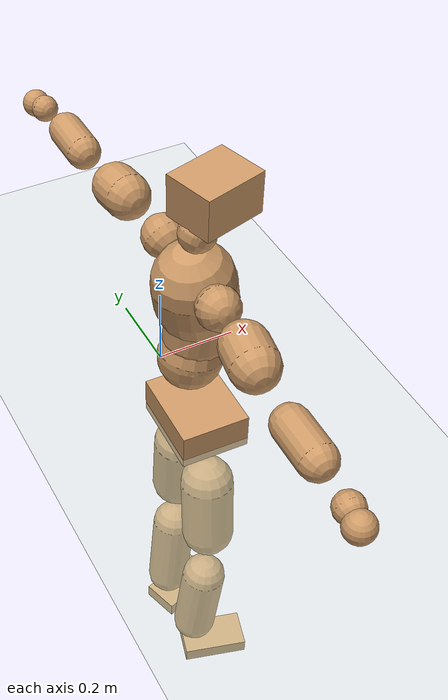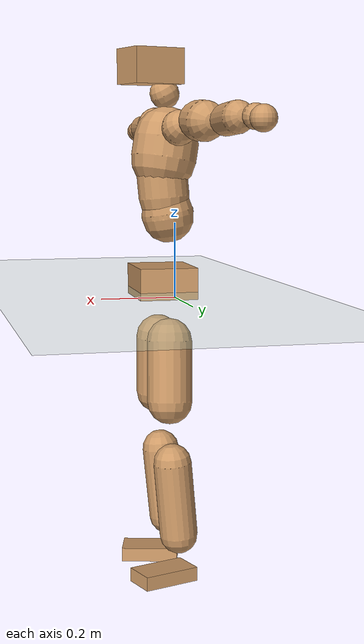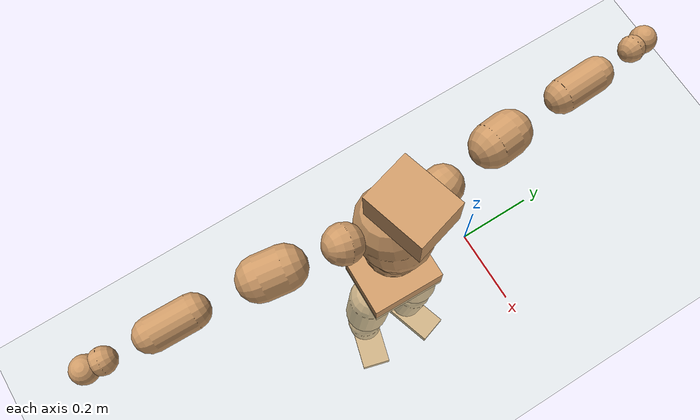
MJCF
<mujoco model="humanoid">
  <compiler coordinate="local" angle="radian"/>
  <default>
    <joint damping="0.0" armature="0.01" stiffness="0.0" limited="true"/>
    <geom conaffinity="1" condim="3" contype="7" margin="0.001" rgba="0.8 0.6 .4 1"/>
  </default>
  <asset>
    <texture type="skybox" builtin="gradient" rgb1=".4 .5 .6" rgb2="0 0 0" width="100" height="100"/>
    <texture builtin="flat" height="1278" mark="cross" markrgb="1 1 1" name="texgeom" random="0.01" rgb1="0.8 0.6 0.4" rgb2="0.8 0.6 0.4" type="cube" width="127"/>
    <texture builtin="checker" height="100" name="texplane" rgb1="0 0 0" rgb2="0.8 0.8 0.8" type="2d" width="100"/>
    <material name="MatPlane" reflectance="0.5" shininess="1" specular="1" texrepeat="60 60" texture="texplane"/>
    <material name="geom" texture="texgeom" texuniform="true"/>
  </asset>
  <worldbody>
    <light cutoff="100" diffuse="1 1 1" dir="-0 0 -1.3" directional="true" exponent="1" pos="0 0 1.3" specular=".1 .1 .1"/>
    <geom conaffinity="1" condim="3" name="floor" pos="0 0 0" rgba="0.8 0.9 0.8 1" size="100 100 .2" type="plane" material="MatPlane"/>
    <body name="Pelvis" pos="-0.0046 -0.2227 0.0286">
      <freejoint name="Pelvis"/>
      <geom type="box" contype="1" conaffinity="1" density="5359.375105" pos="-0.0119 0.0003 -0.0077" size="0.0823 0.1024 0.0445" quat="0.9999 0.0000 0.0000 -0.0116" name="Pelvis"/>
      <body name="L_Hip" pos="-0.0191 0.0573 -0.0784">
        <joint name="L_Hip_x" type="hinge" pos="0 0 0" axis="1 0 0" stiffness="1600" damping="160" armature="0.02" range="-180.0000 180.0000"/>
        <joint name="L_Hip_y" type="hinge" pos="0 0 0" axis="0 1 0" stiffness="1600" damping="160" armature="0.02" range="-180.0000 180.0000"/>
        <joint name="L_Hip_z" type="hinge" pos="0 0 0" axis="0 0 1" stiffness="1600" damping="160" armature="0.02" range="-180.0000 180.0000"/>
        <geom type="capsule" contype="1" conaffinity="1" density="2040.816327" size="0.0647" fromto="0.0020 0.0106 -0.0941 0.0056 0.0300 -0.2662" name="L_Hip"/>
        <body name="L_Knee" pos="0.0075 0.0405 -0.3603">
          <joint name="L_Knee_x" type="hinge" pos="0 0 0" axis="1 0 0" stiffness="1600" damping="160" armature="0.02" range="-180.0000 180.0000"/>
          <joint name="L_Knee_y" type="hinge" pos="0 0 0" axis="0 1 0" stiffness="1600" damping="160" armature="0.02" range="-180.0000 180.0000"/>
          <joint name="L_Knee_z" type="hinge" pos="0 0 0" axis="0 0 1" stiffness="1600" damping="160" armature="0.02" range="-180.0000 180.0000"/>
          <geom type="capsule" contype="1" conaffinity="1" density="1234.567901" size="0.0545" fromto="-0.0079 -0.0029 -0.0841 -0.0284 -0.0104 -0.3011" name="L_Knee"/>
          <body name="L_Ankle" pos="-0.0363 -0.0133 -0.3852">
            <joint name="L_Ankle_x" type="hinge" pos="0 0 0" axis="1 0 0" stiffness="1600" damping="160" armature="0.02" range="-180.0000 180.0000"/>
            <joint name="L_Ankle_y" type="hinge" pos="0 0 0" axis="0 1 0" stiffness="1600" damping="160" armature="0.02" range="-180.0000 180.0000"/>
            <joint name="L_Ankle_z" type="hinge" pos="0 0 0" axis="0 0 1" stiffness="1600" damping="160" armature="0.02" range="-180.0000 180.0000"/>
            <geom type="box" contype="1" conaffinity="1" density="1000.000057" pos="0.0555 0.0177 -0.0271" size="0.0832 0.048 0.0201" quat="0.9881 0.0000 0.0000 0.1536" name="L_Ankle"/>
            <body name="L_Toe" pos="0.1109 0.0353 -0.0542">
              <joint name="L_Toe_x" type="hinge" pos="0 0 0" axis="1 0 0" stiffness="1000" damping="100" armature="0.02" range="-180.0000 180.0000"/>
              <joint name="L_Toe_y" type="hinge" pos="0 0 0" axis="0 1 0" stiffness="1000" damping="100" armature="0.02" range="-180.0000 180.0000"/>
              <joint name="L_Toe_z" type="hinge" pos="0 0 0" axis="0 0 1" stiffness="1000" damping="100" armature="0.02" range="-180.0000 180.0000"/>
              <geom type="box" contype="1" conaffinity="1" density="8136706.713022" pos="0.0000 0.0000 0.0250" size="0.001 0.0024 0.0009" quat="0.9873 0.0000 0.0000 0.1590" name="L_Toe"/>
            </body>
          </body>
        </body>
      </body>
      <body name="R_Hip" pos="-0.0138 -0.0598 -0.0862">
        <joint name="R_Hip_x" type="hinge" pos="0 0 0" axis="1 0 0" stiffness="1600" damping="160" armature="0.02" range="-180.0000 180.0000"/>
        <joint name="R_Hip_y" type="hinge" pos="0 0 0" axis="0 1 0" stiffness="1600" damping="160" armature="0.02" range="-180.0000 180.0000"/>
        <joint name="R_Hip_z" type="hinge" pos="0 0 0" axis="0 0 1" stiffness="1600" damping="160" armature="0.02" range="-180.0000 180.0000"/>
        <geom type="capsule" contype="1" conaffinity="1" density="2040.816327" size="0.0639" fromto="-0.0016 -0.0099 -0.0934 -0.0045 -0.0278 -0.2623" name="R_Hip"/>
        <body name="R_Knee" pos="-0.0062 -0.0377 -0.3557">
          <joint name="R_Knee_x" type="hinge" pos="0 0 0" axis="1 0 0" stiffness="1600" damping="160" armature="0.02" range="-180.0000 180.0000"/>
          <joint name="R_Knee_y" type="hinge" pos="0 0 0" axis="0 1 0" stiffness="1600" damping="160" armature="0.02" range="-180.0000 180.0000"/>
          <joint name="R_Knee_z" type="hinge" pos="0 0 0" axis="0 0 1" stiffness="1600" damping="160" armature="0.02" range="-180.0000 180.0000"/>
          <geom type="capsule" contype="1" conaffinity="1" density="1234.567901" size="0.0545" fromto="-0.0078 0.0038 -0.0841 -0.0271 0.0133 -0.2930" name="R_Knee"/>
          <body name="R_Ankle" pos="-0.0348 0.0171 -0.3771">
            <joint name="R_Ankle_x" type="hinge" pos="0 0 0" axis="1 0 0" stiffness="1600" damping="160" armature="0.02" range="-180.0000 180.0000"/>
            <joint name="R_Ankle_y" type="hinge" pos="0 0 0" axis="0 1 0" stiffness="1600" damping="160" armature="0.02" range="-180.0000 180.0000"/>
            <joint name="R_Ankle_z" type="hinge" pos="0 0 0" axis="0 0 1" stiffness="1600" damping="160" armature="0.02" range="-180.0000 180.0000"/>
            <geom type="box" contype="1" conaffinity="1" density="1000.000027" pos="0.0594 -0.0164 -0.0266" size="0.0829 0.0484 0.02" quat="0.9910 0.0000 0.0000 -0.1340" name="R_Ankle"/>
            <body name="R_Toe" pos="0.1188 -0.0327 -0.0531">
              <joint name="R_Toe_x" type="hinge" pos="0 0 0" axis="1 0 0" stiffness="1000" damping="100" armature="0.02" range="-180.0000 180.0000"/>
              <joint name="R_Toe_y" type="hinge" pos="0 0 0" axis="0 1 0" stiffness="1000" damping="100" armature="0.02" range="-180.0000 180.0000"/>
              <joint name="R_Toe_z" type="hinge" pos="0 0 0" axis="0 0 1" stiffness="1000" damping="100" armature="0.02" range="-180.0000 180.0000"/>
              <geom type="box" contype="1" conaffinity="1" density="8059339.771705" pos="0.0000 0.0000 0.0261" size="0.001 0.0024 0.001" quat="0.9923 0.0000 0.0000 -0.1242" name="R_Toe"/>
            </body>
          </body>
        </body>
      </body>
      <body name="Torso" pos="-0.0387 0.0041 0.1182">
        <joint name="Torso_x" type="hinge" pos="0 0 0" axis="1 0 0" stiffness="2000" damping="200" armature="0.02" range="-180.0000 180.0000"/>
        <joint name="Torso_y" type="hinge" pos="0 0 0" axis="0 1 0" stiffness="2000" damping="200" armature="0.02" range="-180.0000 180.0000"/>
        <joint name="Torso_z" type="hinge" pos="0 0 0" axis="0 0 1" stiffness="2000" damping="200" armature="0.02" range="-180.0000 180.0000"/>
        <geom type="capsule" contype="1" conaffinity="1" density="2040.816327" size="0.0745" fromto="0.0135 0.0023 0.0733 0.0109 0.0018 0.0594" name="Torso"/>
        <body name="Spine" pos="0.0244 0.0041 0.1326">
          <joint name="Spine_x" type="hinge" pos="0 0 0" axis="1 0 0" stiffness="2000" damping="200" armature="0.02" range="-180.0000 180.0000"/>
          <joint name="Spine_y" type="hinge" pos="0 0 0" axis="0 1 0" stiffness="2000" damping="200" armature="0.02" range="-180.0000 180.0000"/>
          <joint name="Spine_z" type="hinge" pos="0 0 0" axis="0 0 1" stiffness="2000" damping="200" armature="0.02" range="-180.0000 180.0000"/>
          <geom type="capsule" contype="1" conaffinity="1" density="2040.816327" size="0.0727" fromto="0.0067 -0.0013 0.0724 -0.0018 0.0003 -0.0193" name="Spine"/>
          <body name="Chest" pos="0.0049 -0.0009 0.0531">
            <joint name="Chest_x" type="hinge" pos="0 0 0" axis="1 0 0" stiffness="2000" damping="200" armature="0.02" range="-180.0000 180.0000"/>
            <joint name="Chest_y" type="hinge" pos="0 0 0" axis="0 1 0" stiffness="2000" damping="200" armature="0.02" range="-180.0000 180.0000"/>
            <joint name="Chest_z" type="hinge" pos="0 0 0" axis="0 0 1" stiffness="2000" damping="200" armature="0.02" range="-180.0000 180.0000"/>
            <geom type="capsule" contype="1" conaffinity="1" density="2040.816327" size="0.0927" fromto="-0.0152 -0.0052 0.0913 -0.0060 -0.0020 0.0360" name="Chest"/>
            <body name="Neck" pos="-0.031 -0.0126 0.1818">
              <joint name="Neck_x" type="hinge" pos="0 0 0" axis="1 0 0" stiffness="1000" damping="100" armature="0.02" range="-180.0000 180.0000"/>
              <joint name="Neck_y" type="hinge" pos="0 0 0" axis="0 1 0" stiffness="1000" damping="100" armature="0.02" range="-180.0000 180.0000"/>
              <joint name="Neck_z" type="hinge" pos="0 0 0" axis="0 0 1" stiffness="1000" damping="100" armature="0.02" range="-180.0000 180.0000"/>
              <geom type="capsule" contype="1" conaffinity="1" density="1000" size="0.0419" fromto="0.0202 0.0050 0.0356 0.0212 0.0052 0.0374" name="Neck"/>
              <body name="Head" pos="0.0414 0.0102 0.073">
                <joint name="Head_x" type="hinge" pos="0 0 0" axis="1 0 0" stiffness="1000" damping="100" armature="0.02" range="-180.0000 180.0000"/>
                <joint name="Head_y" type="hinge" pos="0 0 0" axis="0 1 0" stiffness="1000" damping="100" armature="0.02" range="-180.0000 180.0000"/>
                <joint name="Head_z" type="hinge" pos="0 0 0" axis="0 0 1" stiffness="1000" damping="100" armature="0.02" range="-180.0000 180.0000"/>
                <geom type="box" contype="1" conaffinity="1" density="2250.000162" pos="0.0217 0.0061 0.0375" size="0.0748 0.0606 0.0494" quat="0.9906 0.0000 0.0000 0.1368" name="Head"/>
              </body>
            </body>
            <body name="L_Thorax" pos="-0.0126 0.0663 0.1012">
              <joint name="L_Thorax_x" type="hinge" pos="0 0 0" axis="1 0 0" stiffness="1000" damping="100" armature="0.02" range="-180.0000 180.0000"/>
              <joint name="L_Thorax_y" type="hinge" pos="0 0 0" axis="0 1 0" stiffness="1000" damping="100" armature="0.02" range="-180.0000 180.0000"/>
              <joint name="L_Thorax_z" type="hinge" pos="0 0 0" axis="0 0 1" stiffness="1000" damping="100" armature="0.02" range="-180.0000 180.0000"/>
              <geom type="capsule" contype="1" conaffinity="1" density="1000" size="0.049" fromto="-0.0088 0.0568 0.0199 -0.0091 0.0587 0.0206" name="L_Thorax"/>
              <body name="L_Shoulder" pos="-0.0179 0.1155 0.0405">
                <joint name="L_Shoulder_x" type="hinge" pos="0 0 0" axis="1 0 0" stiffness="1000" damping="100" armature="0.02" range="-720.0000 720.0000"/>
                <joint name="L_Shoulder_y" type="hinge" pos="0 0 0" axis="0 1 0" stiffness="1000" damping="100" armature="0.02" range="-720.0000 720.0000"/>
                <joint name="L_Shoulder_z" type="hinge" pos="0 0 0" axis="0 0 1" stiffness="1000" damping="100" armature="0.02" range="-720.0000 720.0000"/>
                <geom type="capsule" contype="1" conaffinity="1" density="1000" size="0.0533" fromto="-0.0087 0.0828 -0.0044 -0.0139 0.1320 -0.0069" name="L_Shoulder"/>
                <body name="L_Elbow" pos="-0.0226 0.2148 -0.0113">
                  <joint name="L_Elbow_x" type="hinge" pos="0 0 0" axis="1 0 0" stiffness="1000" damping="100" armature="0.02" range="-720.0000 720.0000"/>
                  <joint name="L_Elbow_y" type="hinge" pos="0 0 0" axis="0 1 0" stiffness="1000" damping="100" armature="0.02" range="-720.0000 720.0000"/>
                  <joint name="L_Elbow_z" type="hinge" pos="0 0 0" axis="0 0 1" stiffness="1000" damping="100" armature="0.02" range="-720.0000 720.0000"/>
                  <geom type="capsule" contype="1" conaffinity="1" density="1000" size="0.0405" fromto="-0.0020 0.0704 0.0034 -0.0046 0.1647 0.0078" name="L_Elbow"/>
                  <body name="L_Wrist" pos="-0.0066 0.2351 0.0112">
                    <joint name="L_Wrist_x" type="hinge" pos="0 0 0" axis="1 0 0" stiffness="600" damping="60" armature="0.02" range="-180.0000 180.0000"/>
                    <joint name="L_Wrist_y" type="hinge" pos="0 0 0" axis="0 1 0" stiffness="600" damping="60" armature="0.02" range="-180.0000 180.0000"/>
                    <joint name="L_Wrist_z" type="hinge" pos="0 0 0" axis="0 0 1" stiffness="600" damping="60" armature="0.02" range="-180.0000 180.0000"/>
                    <geom type="capsule" contype="1" conaffinity="1" density="1000" size="0.031" fromto="-0.0068 0.0380 -0.0049 -0.0071 0.0400 -0.0052" name="L_Wrist"/>
                    <body name="L_Hand" pos="-0.0139 0.078 -0.0101">
                      <joint name="L_Hand_x" type="hinge" pos="0 0 0" axis="1 0 0" stiffness="600" damping="60" armature="0.02" range="-180.0000 180.0000"/>
                      <joint name="L_Hand_y" type="hinge" pos="0 0 0" axis="0 1 0" stiffness="600" damping="60" armature="0.02" range="-180.0000 180.0000"/>
                      <joint name="L_Hand_z" type="hinge" pos="0 0 0" axis="0 0 1" stiffness="600" damping="60" armature="0.02" range="-180.0000 180.0000"/>
                      <geom type="sphere" contype="1" conaffinity="1" density="1000" size="0.0321" pos="0.0000 0.0000 0.0000" name="L_Hand"/>
                    </body>
                  </body>
                </body>
              </body>
            </body>
            <body name="R_Thorax" pos="-0.0199 -0.0754 0.0986">
              <joint name="R_Thorax_x" type="hinge" pos="0 0 0" axis="1 0 0" stiffness="1000" damping="100" armature="0.02" range="-180.0000 180.0000"/>
              <joint name="R_Thorax_y" type="hinge" pos="0 0 0" axis="0 1 0" stiffness="1000" damping="100" armature="0.02" range="-180.0000 180.0000"/>
              <joint name="R_Thorax_z" type="hinge" pos="0 0 0" axis="0 0 1" stiffness="1000" damping="100" armature="0.02" range="-180.0000 180.0000"/>
              <geom type="capsule" contype="1" conaffinity="1" density="1000" size="0.0484" fromto="-0.0045 -0.0513 0.0202 -0.0047 -0.0531 0.0209" name="R_Thorax"/>
              <body name="R_Shoulder" pos="-0.0092 -0.1044 0.0411">
                <joint name="R_Shoulder_x" type="hinge" pos="0 0 0" axis="1 0 0" stiffness="1000" damping="100" armature="0.02" range="-720.0000 720.0000"/>
                <joint name="R_Shoulder_y" type="hinge" pos="0 0 0" axis="0 1 0" stiffness="1000" damping="100" armature="0.02" range="-720.0000 720.0000"/>
                <joint name="R_Shoulder_z" type="hinge" pos="0 0 0" axis="0 0 1" stiffness="1000" damping="100" armature="0.02" range="-720.0000 720.0000"/>
                <geom type="capsule" contype="1" conaffinity="1" density="1000" size="0.0529" fromto="-0.0121 -0.0820 -0.0033 -0.0202 -0.1368 -0.0056" name="R_Shoulder"/>
                <body name="R_Elbow" pos="-0.0323 -0.2188 -0.0089">
                  <joint name="R_Elbow_x" type="hinge" pos="0 0 0" axis="1 0 0" stiffness="1000" damping="100" armature="0.02" range="-720.0000 720.0000"/>
                  <joint name="R_Elbow_y" type="hinge" pos="0 0 0" axis="0 1 0" stiffness="1000" damping="100" armature="0.02" range="-720.0000 720.0000"/>
                  <joint name="R_Elbow_z" type="hinge" pos="0 0 0" axis="0 0 1" stiffness="1000" damping="100" armature="0.02" range="-720.0000 720.0000"/>
                  <geom type="capsule" contype="1" conaffinity="1" density="1000" size="0.0402" fromto="-0.0015 -0.0702 0.0008 -0.0035 -0.1643 0.0018" name="R_Elbow"/>
                  <body name="R_Wrist" pos="-0.005 -0.2345 0.0025">
                    <joint name="R_Wrist_x" type="hinge" pos="0 0 0" axis="1 0 0" stiffness="600" damping="60" armature="0.02" range="-180.0000 180.0000"/>
                    <joint name="R_Wrist_y" type="hinge" pos="0 0 0" axis="0 1 0" stiffness="600" damping="60" armature="0.02" range="-180.0000 180.0000"/>
                    <joint name="R_Wrist_z" type="hinge" pos="0 0 0" axis="0 0 1" stiffness="600" damping="60" armature="0.02" range="-180.0000 180.0000"/>
                    <geom type="capsule" contype="1" conaffinity="1" density="1000" size="0.031" fromto="-0.0044 -0.0384 -0.0038 -0.0046 -0.0404 -0.0040" name="R_Wrist"/>
                    <body name="R_Hand" pos="-0.009 -0.0787 -0.0078">
                      <joint name="R_Hand_x" type="hinge" pos="0 0 0" axis="1 0 0" stiffness="600" damping="60" armature="0.02" range="-180.0000 180.0000"/>
                      <joint name="R_Hand_y" type="hinge" pos="0 0 0" axis="0 1 0" stiffness="600" damping="60" armature="0.02" range="-180.0000 180.0000"/>
                      <joint name="R_Hand_z" type="hinge" pos="0 0 0" axis="0 0 1" stiffness="600" damping="60" armature="0.02" range="-180.0000 180.0000"/>
                      <geom type="sphere" contype="1" conaffinity="1" density="1000" size="0.0321" pos="0.0000 0.0000 0.0000" name="R_Hand"/>
                    </body>
                  </body>
                </body>
              </body>
            </body>
          </body>
        </body>
      </body>
    </body>
  </worldbody>
  <actuator>
    <motor name="L_Hip_x" joint="L_Hip_x" gear="500"/>
    <motor name="L_Hip_y" joint="L_Hip_y" gear="500"/>
    <motor name="L_Hip_z" joint="L_Hip_z" gear="500"/>
    <motor name="L_Knee_x" joint="L_Knee_x" gear="500"/>
    <motor name="L_Knee_y" joint="L_Knee_y" gear="500"/>
    <motor name="L_Knee_z" joint="L_Knee_z" gear="500"/>
    <motor name="L_Ankle_x" joint="L_Ankle_x" gear="500"/>
    <motor name="L_Ankle_y" joint="L_Ankle_y" gear="500"/>
    <motor name="L_Ankle_z" joint="L_Ankle_z" gear="500"/>
    <motor name="L_Toe_x" joint="L_Toe_x" gear="500"/>
    <motor name="L_Toe_y" joint="L_Toe_y" gear="500"/>
    <motor name="L_Toe_z" joint="L_Toe_z" gear="500"/>
    <motor name="R_Hip_x" joint="R_Hip_x" gear="500"/>
    <motor name="R_Hip_y" joint="R_Hip_y" gear="500"/>
    <motor name="R_Hip_z" joint="R_Hip_z" gear="500"/>
    <motor name="R_Knee_x" joint="R_Knee_x" gear="500"/>
    <motor name="R_Knee_y" joint="R_Knee_y" gear="500"/>
    <motor name="R_Knee_z" joint="R_Knee_z" gear="500"/>
    <motor name="R_Ankle_x" joint="R_Ankle_x" gear="500"/>
    <motor name="R_Ankle_y" joint="R_Ankle_y" gear="500"/>
    <motor name="R_Ankle_z" joint="R_Ankle_z" gear="500"/>
    <motor name="R_Toe_x" joint="R_Toe_x" gear="500"/>
    <motor name="R_Toe_y" joint="R_Toe_y" gear="500"/>
    <motor name="R_Toe_z" joint="R_Toe_z" gear="500"/>
    <motor name="Torso_x" joint="Torso_x" gear="500"/>
    <motor name="Torso_y" joint="Torso_y" gear="500"/>
    <motor name="Torso_z" joint="Torso_z" gear="500"/>
    <motor name="Spine_x" joint="Spine_x" gear="500"/>
    <motor name="Spine_y" joint="Spine_y" gear="500"/>
    <motor name="Spine_z" joint="Spine_z" gear="500"/>
    <motor name="Chest_x" joint="Chest_x" gear="500"/>
    <motor name="Chest_y" joint="Chest_y" gear="500"/>
    <motor name="Chest_z" joint="Chest_z" gear="500"/>
    <motor name="Neck_x" joint="Neck_x" gear="500"/>
    <motor name="Neck_y" joint="Neck_y" gear="500"/>
    <motor name="Neck_z" joint="Neck_z" gear="500"/>
    <motor name="Head_x" joint="Head_x" gear="500"/>
    <motor name="Head_y" joint="Head_y" gear="500"/>
    <motor name="Head_z" joint="Head_z" gear="500"/>
    <motor name="L_Thorax_x" joint="L_Thorax_x" gear="500"/>
    <motor name="L_Thorax_y" joint="L_Thorax_y" gear="500"/>
    <motor name="L_Thorax_z" joint="L_Thorax_z" gear="500"/>
    <motor name="L_Shoulder_x" joint="L_Shoulder_x" gear="500"/>
    <motor name="L_Shoulder_y" joint="L_Shoulder_y" gear="500"/>
    <motor name="L_Shoulder_z" joint="L_Shoulder_z" gear="500"/>
    <motor name="L_Elbow_x" joint="L_Elbow_x" gear="500"/>
    <motor name="L_Elbow_y" joint="L_Elbow_y" gear="500"/>
    <motor name="L_Elbow_z" joint="L_Elbow_z" gear="500"/>
    <motor name="L_Wrist_x" joint="L_Wrist_x" gear="500"/>
    <motor name="L_Wrist_y" joint="L_Wrist_y" gear="500"/>
    <motor name="L_Wrist_z" joint="L_Wrist_z" gear="500"/>
    <motor name="L_Hand_x" joint="L_Hand_x" gear="500"/>
    <motor name="L_Hand_y" joint="L_Hand_y" gear="500"/>
    <motor name="L_Hand_z" joint="L_Hand_z" gear="500"/>
    <motor name="R_Thorax_x" joint="R_Thorax_x" gear="500"/>
    <motor name="R_Thorax_y" joint="R_Thorax_y" gear="500"/>
    <motor name="R_Thorax_z" joint="R_Thorax_z" gear="500"/>
    <motor name="R_Shoulder_x" joint="R_Shoulder_x" gear="500"/>
    <motor name="R_Shoulder_y" joint="R_Shoulder_y" gear="500"/>
    <motor name="R_Shoulder_z" joint="R_Shoulder_z" gear="500"/>
    <motor name="R_Elbow_x" joint="R_Elbow_x" gear="500"/>
    <motor name="R_Elbow_y" joint="R_Elbow_y" gear="500"/>
    <motor name="R_Elbow_z" joint="R_Elbow_z" gear="500"/>
    <motor name="R_Wrist_x" joint="R_Wrist_x" gear="500"/>
    <motor name="R_Wrist_y" joint="R_Wrist_y" gear="500"/>
    <motor name="R_Wrist_z" joint="R_Wrist_z" gear="500"/>
    <motor name="R_Hand_x" joint="R_Hand_x" gear="500"/>
    <motor name="R_Hand_y" joint="R_Hand_y" gear="500"/>
    <motor name="R_Hand_z" joint="R_Hand_z" gear="500"/>
  </actuator>
  <contact>
    <exclude body1="Torso" body2="Chest"/>
    <exclude body1="Head" body2="Chest"/>
    <exclude body1="R_Knee" body2="R_Toe"/>
    <exclude body1="R_Knee" body2="L_Ankle"/>
    <exclude body1="R_Knee" body2="L_Toe"/>
    <exclude body1="L_Knee" body2="L_Toe"/>
    <exclude body1="L_Knee" body2="R_Ankle"/>
    <exclude body1="L_Knee" body2="R_Toe"/>
    <exclude body1="L_Shoulder" body2="Chest"/>
    <exclude body1="R_Shoulder" body2="Chest"/>
  </contact>
  <sensor/>
  <size njmax="700" nconmax="700"/>
</mujoco>
